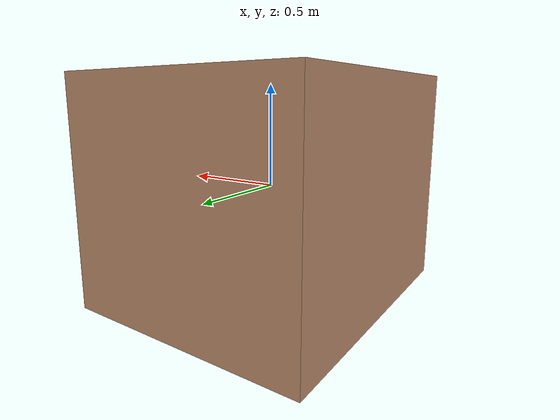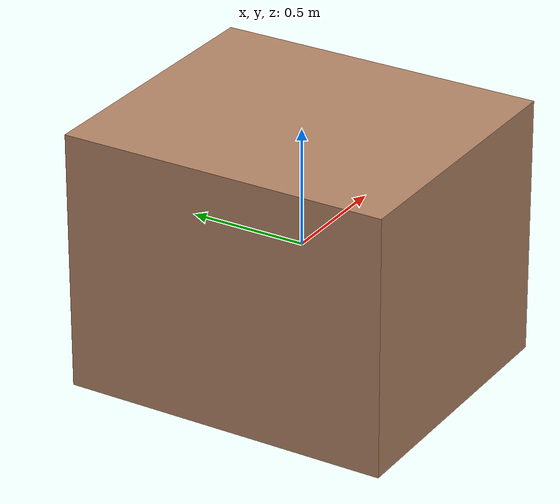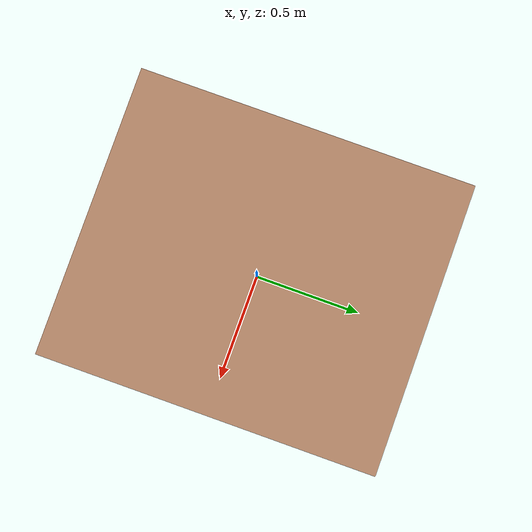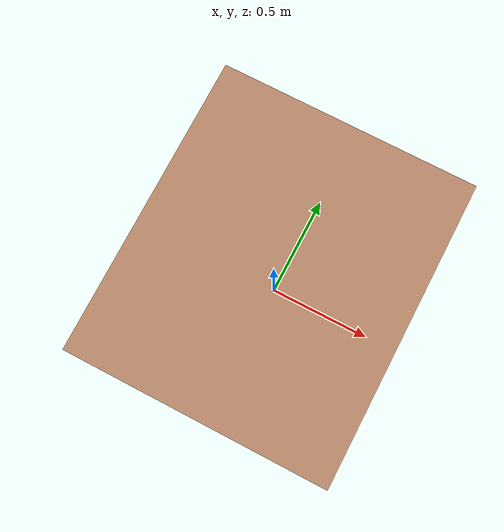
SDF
<?xml version="1.0" ?>
<sdf version="1.8">
  <model name="desert_rock">
    <static>true</static>
    <link name="link">
      <collision name="collision">
        <geometry>
          <box><size>1.2 1.4 1.1</size></box>
        </geometry>
      </collision>
      <visual name="visual">
        <geometry>
          <box><size>1.2 1.4 1.1</size></box>
        </geometry>
        <material>
          <ambient>0.6 0.45 0.35 1</ambient>
          <diffuse>0.7 0.52 0.4 1</diffuse>
        </material>
      </visual>
    </link>
  </model>
</sdf>
